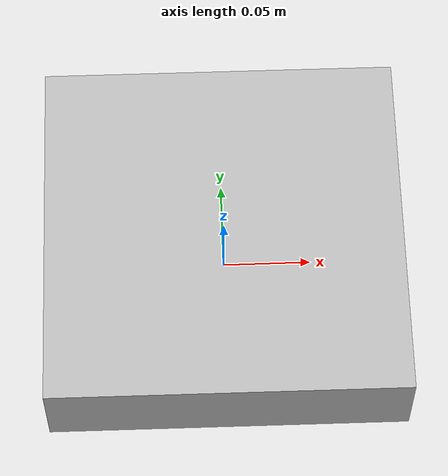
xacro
<?xml version="1.0" ?>
<robot name="only_box" xmlns:xacro="http://www.ros.org/wiki/xacro">

<xacro:include filename="$(find only_box_description)/urdf/materials.xacro" />
<xacro:include filename="$(find only_box_description)/urdf/only_box.trans" />
<xacro:include filename="$(find only_box_description)/urdf/only_box.gazebo" />
<link name="base_link">
  <inertial>
    <origin rpy="0 0 0" xyz="0.0 0.0 0.025"/>
    <mass value="5.3999999999999995"/>
    <inertia ixx="0.019125" ixy="0.0" ixz="0.0" iyy="0.019125" iyz="0.0" izz="0.036"/>
  </inertial>
  <visual>
    <origin rpy="0 0 0" xyz="0 0 0"/>
    <geometry>
      <mesh filename="package://only_box_description/meshes/base_link.stl" scale="0.001 0.001 0.001"/>
    </geometry>
    <material name="silver"/>
  </visual>
  <collision>
    <origin rpy="0 0 0" xyz="0 0 0"/>
    <geometry>
      <mesh filename="package://only_box_description/meshes/base_link.stl" scale="0.001 0.001 0.001"/>
    </geometry>
  </collision>
</link>

</robot>

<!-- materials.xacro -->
<robot name="only_box" xmlns:xacro="http://www.ros.org/wiki/xacro" >

<material name="silver">
  <color rgba="0.700 0.700 0.700 1.000"/>
</material>

</robot>

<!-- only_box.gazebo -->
<robot name="only_box" xmlns:xacro="http://www.ros.org/wiki/xacro" >

<xacro:property name="body_color" value="Gazebo/Silver" />

<gazebo>
  <plugin filename="libgazebo_ros_control.so" name="control"/>
</gazebo>
<gazebo reference="base_link">
  <material>${body_color}</material>
  <mu1>0.2</mu1>
  <mu2>0.2</mu2>
  <selfCollide>true</selfCollide>
  <gravity>true</gravity>
</gazebo>

</robot>
